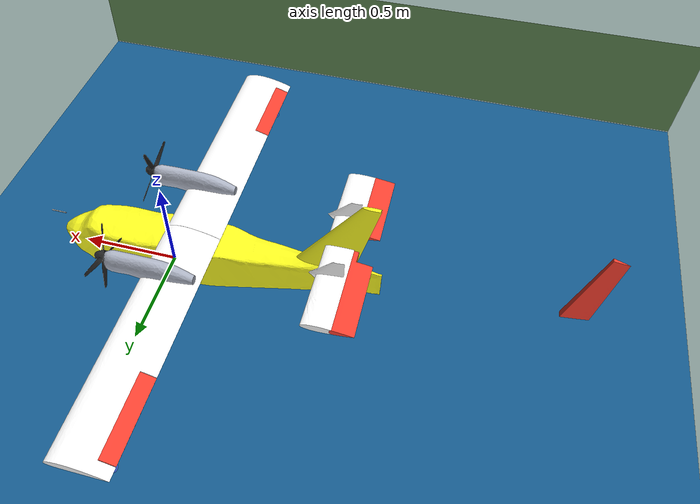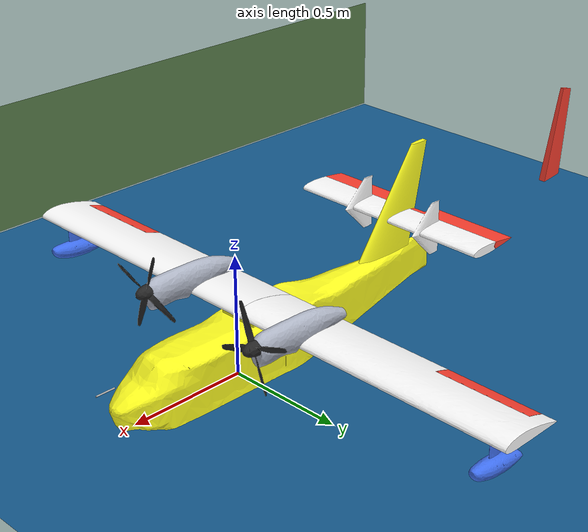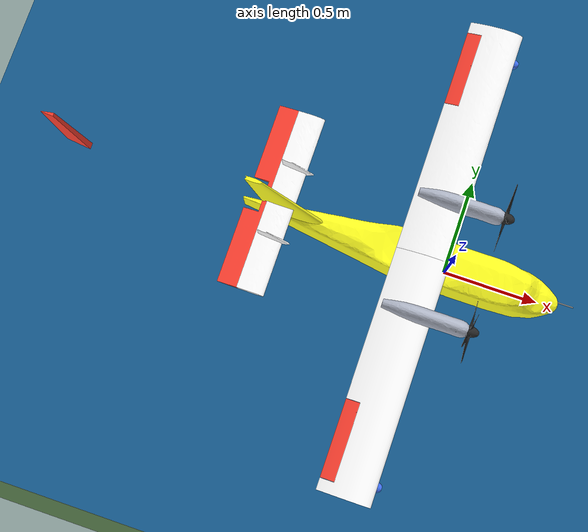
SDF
<?xml version="1.0" encoding="UTF-8"?>
<sdf version="1.9">
  <world name="cl415_water">
    <physics type="ode">
      <max_step_size>0.004</max_step_size>
      <real_time_factor>1.0</real_time_factor>
      <real_time_update_rate>250</real_time_update_rate>
    </physics>
    <plugin filename="gz-sim-physics-system" name="gz::sim::systems::Physics"/>
    <plugin filename="gz-sim-user-commands-system" name="gz::sim::systems::UserCommands"/>
    <plugin filename="gz-sim-scene-broadcaster-system" name="gz::sim::systems::SceneBroadcaster"/>
    <plugin filename="gz-sim-contact-system" name="gz::sim::systems::Contact"/>
    <plugin filename="gz-sim-imu-system" name="gz::sim::systems::Imu"/>
    <plugin filename="gz-sim-air-pressure-system" name="gz::sim::systems::AirPressure"/>
    <plugin filename="gz-sim-air-speed-system" name="gz::sim::systems::AirSpeed"/>
    <plugin filename="gz-sim-navsat-system" name="gz::sim::systems::NavSat"/>
    <plugin filename="gz-sim-magnetometer-system" name="gz::sim::systems::Magnetometer"/>
    <plugin filename="gz-sim-sensors-system" name="gz::sim::systems::Sensors">
      <render_engine>ogre2</render_engine>
    </plugin>
    <gravity>0 0 -9.8</gravity>
    <magnetic_field>6e-06 2.3e-05 -4.2e-05</magnetic_field>
    <atmosphere type="adiabatic"/>
    <spherical_coordinates>
      <surface_model>EARTH_WGS84</surface_model>
      <world_frame_orientation>ENU</world_frame_orientation>
      <latitude_deg>47.397971057728974</latitude_deg>
      <longitude_deg>8.546163739800146</longitude_deg>
      <elevation>0</elevation>
    </spherical_coordinates>
    <scene>
      <grid>false</grid>
      <ambient>0.4 0.4 0.4 1</ambient>
      <background>0.6 0.75 0.9 1</background>
      <shadows>true</shadows>
    </scene>
    <light name="sun" type="directional">
      <pose>0 0 500 0 0 0</pose>
      <cast_shadows>true</cast_shadows>
      <diffuse>0.9 0.9 0.9 1</diffuse>
      <specular>0.3 0.3 0.3 1</specular>
      <direction>0.2 0.5 -0.8</direction>
    </light>
    <model name="sea">
      <static>true</static>
      <link name="link">
        <collision name="seabed">
          <pose>0 0 -30 0 0 0</pose>
          <geometry><plane><normal>0 0 1</normal><size>6000 6000</size></plane></geometry>
        </collision>
        <visual name="surface">
          <pose>0 0 -0.003 0 0 0</pose>
          <geometry><plane><normal>0 0 1</normal><size>6000 6000</size></plane></geometry>
          <material>
            <ambient>0.05 0.25 0.4 0.85</ambient>
            <diffuse>0.08 0.35 0.55 0.85</diffuse>
            <specular>0.6 0.6 0.6 1</specular>
          </material>
        </visual>
        <visual name="shore">
          <pose>0 -1500 0.3 0 0 0</pose>
          <geometry><box><size>6000 1000 0.6</size></box></geometry>
          <material><ambient>0.35 0.5 0.3 1</ambient><diffuse>0.35 0.5 0.3 1</diffuse></material>
        </visual>
      </link>
    </model>
    <model name="chase_cam">
      <pose>-8 -3.5 2.5 0 0 0</pose>
      <link name="link">
        <gravity>false</gravity>
        <inertial><mass>0.01</mass><inertia><ixx>1e-5</ixx><iyy>1e-5</iyy><izz>1e-5</izz></inertia></inertial>
        <sensor name="camera" type="camera">
          <update_rate>25</update_rate>
          <always_on>1</always_on>
          <visualize>false</visualize>
          <topic>/chase/image</topic>
          <camera>
            <horizontal_fov>0.85</horizontal_fov>
            <image><width>1280</width><height>720</height><format>R8G8B8</format></image>
            <clip><near>0.1</near><far>4000</far></clip>
          </camera>
          <plugin filename="gz-sim-camera-video-recorder-system" name="gz::sim::systems::CameraVideoRecorder">
            <service>/chase/record_video</service>
            <use_sim_time>true</use_sim_time>
            <fps>25</fps>
            <bitrate>6000000</bitrate>
          </plugin>
        </sensor>
      </link>
      <plugin filename="libCl415ChaseCamera.so" name="cl415::ChaseCamera">
        <target>cl415</target>
        <offset>-5.5 -2.6 1.3</offset>
        <look_height>0.1</look_height>
        <smoothing>0.25</smoothing>
      </plugin>
    </model>
    <include>
      <uri>model://cl415_px4_water</uri>
      <name>cl415</name>
      <pose>0 0 0.250 0 0 0</pose>
    </include>
  </world>
</sdf>
